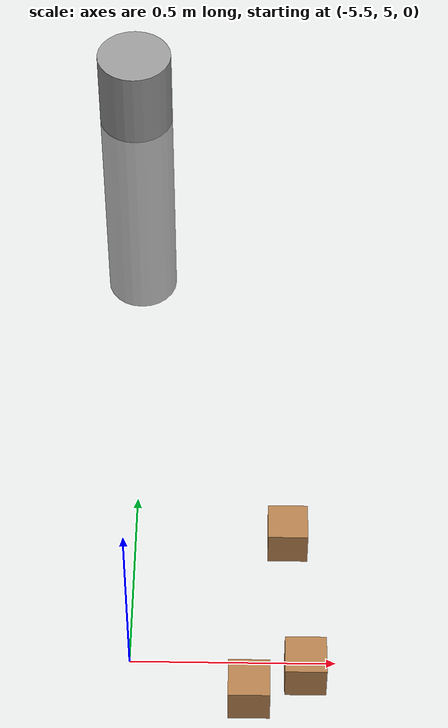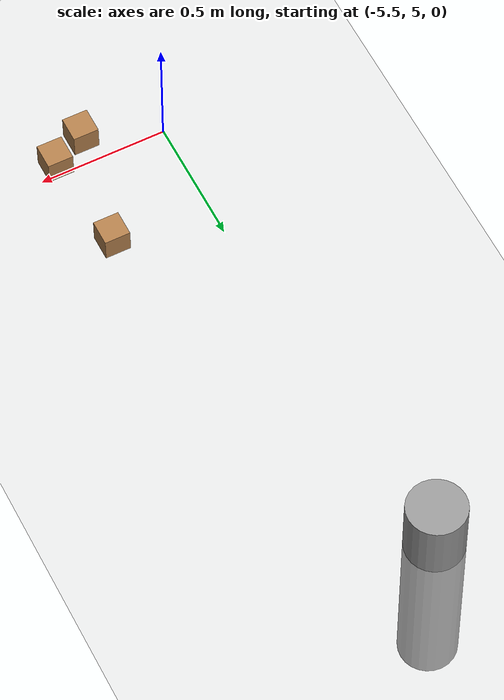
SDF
<sdf version="1.7">
 <world name="default">
  <model name="ground_plane">
   <static>1</static>
   <link name="link">
    <collision name="collision">
     <geometry><plane><normal>0 0 1</normal><size>100 100</size></plane></geometry>
     <surface>
      <contact><collide_bitmask>65535</collide_bitmask></contact>
      <friction><ode><mu>1.0</mu><mu2>1.0</mu2></ode></friction>
     </surface>
    </collision>
    <visual name="visual">
     <cast_shadows>0</cast_shadows>
     <geometry><plane><normal>0 0 1</normal><size>100 100</size></plane></geometry>
     <material>
      <script><uri>file://media/materials/scripts/gazebo.material</uri><name>Gazebo/Grey</name></script>
     </material>
    </visual>
   </link>
  </model>
  <model name="wood_cube_10cm_clone_1">
   <link name="link">
    <pose>0 0 0.05 0 -0 0</pose>
    <inertial>
     <mass>0.5167</mass>
     <inertia>
      <ixx>0.000861167</ixx>
      <ixy>0</ixy>
      <ixz>0</ixz>
      <iyy>0.000861167</iyy>
      <iyz>0</iyz>
      <izz>0.000861167</izz>
     </inertia>
    </inertial>
    <collision name="collision">
     <geometry><box><size>0.1 0.1 0.1</size></box></geometry>
     <surface>
      <contact>
       <poissons_ratio>0.347</poissons_ratio>
       <elastic_modulus>8.8e+09</elastic_modulus>
       <ode><kp>100000</kp><kd>100</kd><max_vel>100</max_vel><min_depth>0.001</min_depth></ode>
      </contact>
      <friction>
       <torsional>
        <coefficient>1</coefficient>
        <use_patch_radius>0</use_patch_radius>
        <surface_radius>0.01</surface_radius>
       </torsional>
      </friction>
     </surface>
    </collision>
    <visual name="visual">
     <geometry><box><size>0.1 0.1 0.1</size></box></geometry>
     <material>
      <script><uri>file://media/materials/scripts/gazebo.material</uri><name>Gazebo/Wood</name></script>
     </material>
    </visual>
   </link>
   <pose>-5.21036 4.89458 -0.001013 0 -0 0</pose>
  </model>
  <model name="wood_cube_10cm_clone_2">
   <link name="link">
    <pose>0 0 0.05 0 -0 0</pose>
    <inertial>
     <mass>0.5167</mass>
     <inertia>
      <ixx>0.000861167</ixx>
      <ixy>0</ixy>
      <ixz>0</ixz>
      <iyy>0.000861167</iyy>
      <iyz>0</iyz>
      <izz>0.000861167</izz>
     </inertia>
    </inertial>
    <collision name="collision">
     <geometry><box><size>0.1 0.1 0.1</size></box></geometry>
     <surface>
      <contact>
       <poissons_ratio>0.347</poissons_ratio>
       <elastic_modulus>8.8e+09</elastic_modulus>
       <ode><kp>100000</kp><kd>100</kd><max_vel>100</max_vel><min_depth>0.001</min_depth></ode>
      </contact>
      <friction>
       <torsional>
        <coefficient>1</coefficient>
        <use_patch_radius>0</use_patch_radius>
        <surface_radius>0.01</surface_radius>
       </torsional>
      </friction>
     </surface>
    </collision>
    <visual name="visual">
     <geometry><box><size>0.1 0.1 0.1</size></box></geometry>
     <material>
      <script><uri>file://media/materials/scripts/gazebo.material</uri><name>Gazebo/Wood</name></script>
     </material>
    </visual>
   </link>
   <pose>-5.1145 5.35732 -0.001013 0 -0 0</pose>
  </model>
  <model name="wood_cube_10cm_clone_5">
   <link name="link">
    <pose>0 0 0.05 0 -0 0</pose>
    <inertial>
     <mass>0.5167</mass>
     <inertia>
      <ixx>0.000861167</ixx>
      <ixy>0</ixy>
      <ixz>0</ixz>
      <iyy>0.000861167</iyy>
      <iyz>0</iyz>
      <izz>0.000861167</izz>
     </inertia>
    </inertial>
    <collision name="collision">
     <geometry><box><size>0.1 0.1 0.1</size></box></geometry>
     <surface>
      <contact>
       <poissons_ratio>0.347</poissons_ratio>
       <elastic_modulus>8.8e+09</elastic_modulus>
       <ode><kp>100000</kp><kd>100</kd><max_vel>100</max_vel><min_depth>0.001</min_depth></ode>
      </contact>
      <friction>
       <torsional>
        <coefficient>1</coefficient>
        <use_patch_radius>0</use_patch_radius>
        <surface_radius>0.01</surface_radius>
       </torsional>
      </friction>
     </surface>
    </collision>
    <visual name="visual">
     <geometry><box><size>0.1 0.1 0.1</size></box></geometry>
     <material>
      <script><uri>file://media/materials/scripts/gazebo.material</uri><name>Gazebo/Wood</name></script>
     </material>
    </visual>
   </link>
   <pose>-5.0744 4.96094 -0.001013 0 -0 0</pose>
  </model>
  <model name="unit_cylinder_clone_3_clone_clone_12">
   <link name="link">
    <inertial>
     <mass>0.0497635</mass>
     <inertia>
      <ixx>0.00430173</ixx>
      <ixy>0</ixy>
      <ixz>0</ixz>
      <iyy>0.00430173</iyy>
      <iyz>0</iyz>
      <izz>0.00030955</izz>
     </inertia>
    </inertial>
    <pose>0.001965 -0.009653 -0.499784 1.55252 -0 0</pose>
    <visual name="visual">
     <geometry><cylinder><radius>0.111539</radius><length>1</length></cylinder></geometry>
     <material>
      <script><name>Gazebo/Grey</name><uri>file://media/materials/scripts/gazebo.material</uri></script>
      <shader type="pixel"/>
     </material>
    </visual>
    <collision name="collision">
     <geometry><cylinder><radius>0.111539</radius><length>1</length></cylinder></geometry>
     <surface>
      <friction>
       <ode><mu>1.0</mu><mu2>1.0</mu2><fdir1>0 0 0</fdir1><slip1>0</slip1><slip2>0</slip2></ode>
       <torsional>
        <coefficient>1</coefficient>
        <patch_radius>0</patch_radius>
        <surface_radius>0</surface_radius>
        <use_patch_radius>1</use_patch_radius>
        <ode><slip>0</slip></ode>
       </torsional>
      </friction>
      <bounce><restitution_coefficient>0</restitution_coefficient><threshold>1e+06</threshold></bounce>
      <contact>
       <collide_without_contact>0</collide_without_contact>
       <collide_without_contact_bitmask>1</collide_without_contact_bitmask>
       <collide_bitmask>1</collide_bitmask>
       <ode>
        <soft_cfm>0</soft_cfm>
        <soft_erp>0.2</soft_erp>
        <kp>1e+13</kp>
        <kd>1</kd>
        <max_vel>0.01</max_vel>
        <min_depth>0</min_depth>
       </ode>
       <bullet>
        <split_impulse>1</split_impulse>
        <split_impulse_penetration_threshold>-0.01</split_impulse_penetration_threshold>
        <soft_cfm>0</soft_cfm>
        <soft_erp>0.2</soft_erp>
        <kp>1e+13</kp>
        <kd>1</kd>
       </bullet>
      </contact>
     </surface>
    </collision>
   </link>
   <static>1</static>
   <pose>-5.56848 6.49181 -0.259907 1.61465 -0 0</pose>
  </model>
 </world>
</sdf>
